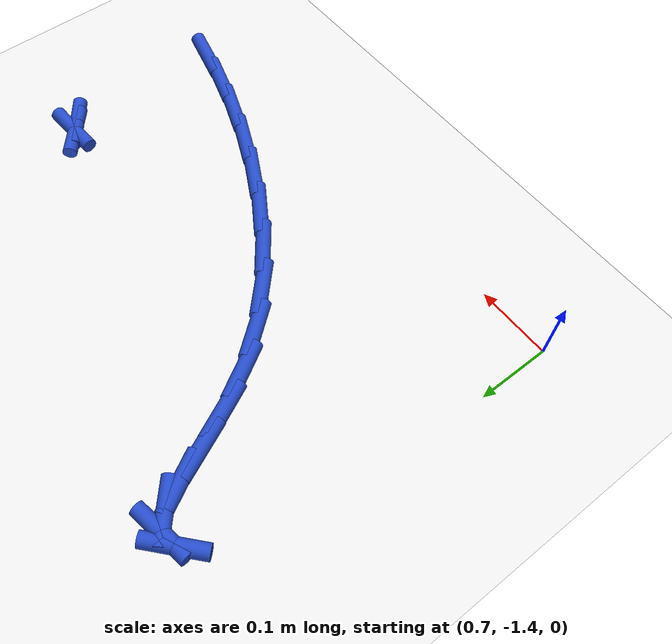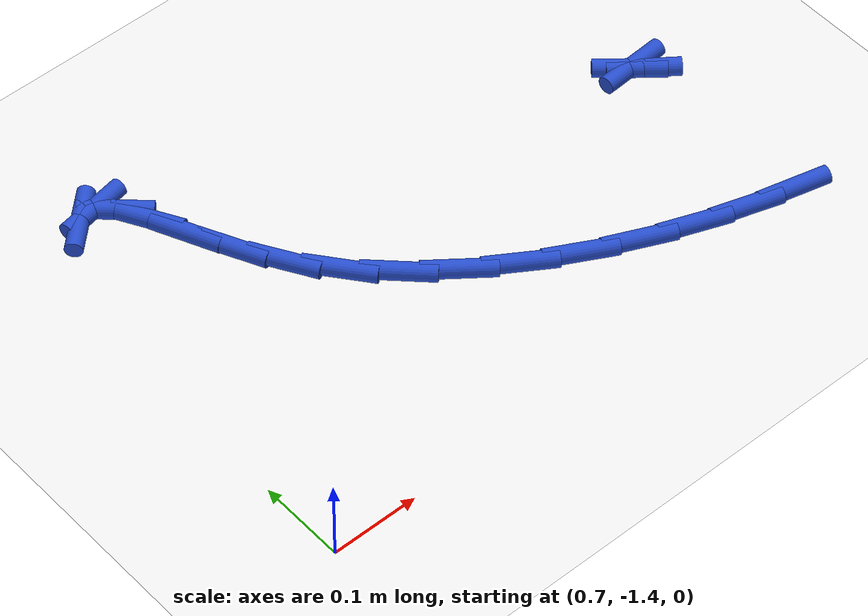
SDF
<sdf version="1.6">
 <world name="default">
  <model name="ground_plane">
   <static>1</static>
   <link name="link">
    <collision name="collision">
     <geometry><plane><normal>0 0 1</normal><size>100 100</size></plane></geometry>
     <surface><friction><ode><mu>100</mu><mu2>50</mu2></ode></friction></surface>
    </collision>
    <visual name="visual">
     <cast_shadows>0</cast_shadows>
     <geometry><plane><normal>0 0 1</normal><size>100 100</size></plane></geometry>
     <material>
      <script><uri>file://media/materials/scripts/gazebo.material</uri><name>Gazebo/WhiteGlow</name></script>
     </material>
    </visual>
   </link>
  </model>
  <model name="line">
   <link name="link_161">
    <pose>1.34033810312229 -1.1240543171024084 0.01 0 1.57 0.06470019970995604</pose>
    <collision name="collision">
     <geometry><cylinder><radius>0.01</radius><length>0.08</length></cylinder></geometry>
    </collision>
    <visual name="visual">
     <material>
      <script><name>Gazebo/Blue</name><uri>file://media/materials/scripts/gazebo.material</uri></script>
     </material>
     <geometry><cylinder><radius>0.01</radius><length>0.08</length></cylinder></geometry>
    </visual>
   </link>
   <link name="link_162">
    <pose>1.3365340892029416 -1.1243007815683062 0.01 0 1.57 -0.7131186564867583</pose>
    <collision name="collision">
     <geometry><cylinder><radius>0.01</radius><length>0.08</length></cylinder></geometry>
    </collision>
    <visual name="visual">
     <material>
      <script><name>Gazebo/Blue</name><uri>file://media/materials/scripts/gazebo.material</uri></script>
     </material>
     <geometry><cylinder><radius>0.01</radius><length>0.08</length></cylinder></geometry>
    </visual>
   </link>
   <link name="link_163">
    <pose>1.3476157120141734 -1.1338860079166277 0.01 0 1.57 -0.6480095713323362</pose>
    <collision name="collision">
     <geometry><cylinder><radius>0.01</radius><length>0.08</length></cylinder></geometry>
    </collision>
    <visual name="visual">
     <material>
      <script><name>Gazebo/Blue</name><uri>file://media/materials/scripts/gazebo.material</uri></script>
     </material>
     <geometry><cylinder><radius>0.01</radius><length>0.08</length></cylinder></geometry>
    </visual>
   </link>
   <link name="link_177">
    <pose>1.3468040295398374 -1.357437151056246 0.01 0 1.57 -0.24086616348968268</pose>
    <collision name="collision">
     <geometry><cylinder><radius>0.01</radius><length>0.08</length></cylinder></geometry>
    </collision>
    <visual name="visual">
     <material>
      <script><name>Gazebo/Blue</name><uri>file://media/materials/scripts/gazebo.material</uri></script>
     </material>
     <geometry><cylinder><radius>0.01</radius><length>0.08</length></cylinder></geometry>
    </visual>
   </link>
   <link name="link_178">
    <pose>1.293360959533032 -1.3443096661699097 0.01 0 1.57 -0.3029003433937101</pose>
    <collision name="collision">
     <geometry><cylinder><radius>0.01</radius><length>0.08</length></cylinder></geometry>
    </collision>
    <visual name="visual">
     <material>
      <script><name>Gazebo/Blue</name><uri>file://media/materials/scripts/gazebo.material</uri></script>
     </material>
     <geometry><cylinder><radius>0.01</radius><length>0.08</length></cylinder></geometry>
    </visual>
   </link>
   <link name="link_179">
    <pose>1.2376705527170306 -1.326905468064104 0.01 0 1.57 -0.36428131765784943</pose>
    <collision name="collision">
     <geometry><cylinder><radius>0.01</radius><length>0.08</length></cylinder></geometry>
    </collision>
    <visual name="visual">
     <material>
      <script><name>Gazebo/Blue</name><uri>file://media/materials/scripts/gazebo.material</uri></script>
     </material>
     <geometry><cylinder><radius>0.01</radius><length>0.08</length></cylinder></geometry>
    </visual>
   </link>
   <link name="link_180">
    <pose>1.1810282377442405 -1.3053078291482316 0.01 0 1.57 -0.4283550436507587</pose>
    <collision name="collision">
     <geometry><cylinder><radius>0.01</radius><length>0.08</length></cylinder></geometry>
    </collision>
    <visual name="visual">
     <material>
      <script><name>Gazebo/Blue</name><uri>file://media/materials/scripts/gazebo.material</uri></script>
     </material>
     <geometry><cylinder><radius>0.01</radius><length>0.08</length></cylinder></geometry>
    </visual>
   </link>
   <link name="link_181">
    <pose>1.1247294432670647 -1.2796000218316959 0.01 0 1.57 -0.49822145183963723</pose>
    <collision name="collision">
     <geometry><cylinder><radius>0.01</radius><length>0.08</length></cylinder></geometry>
    </collision>
    <visual name="visual">
     <material>
      <script><name>Gazebo/Blue</name><uri>file://media/materials/scripts/gazebo.material</uri></script>
     </material>
     <geometry><cylinder><radius>0.01</radius><length>0.08</length></cylinder></geometry>
    </visual>
   </link>
   <link name="link_182">
    <pose>1.0700695979379065 -1.2498653185238984 0.01 0 1.57 -0.5771464210321366</pose>
    <collision name="collision">
     <geometry><cylinder><radius>0.01</radius><length>0.08</length></cylinder></geometry>
    </collision>
    <visual name="visual">
     <material>
      <script><name>Gazebo/Blue</name><uri>file://media/materials/scripts/gazebo.material</uri></script>
     </material>
     <geometry><cylinder><radius>0.01</radius><length>0.08</length></cylinder></geometry>
    </visual>
   </link>
   <link name="link_183">
    <pose>1.018344130409171 -1.2161869916342423 0.01 0 1.57 -0.6688352859069451</pose>
    <collision name="collision">
     <geometry><cylinder><radius>0.01</radius><length>0.08</length></cylinder></geometry>
    </collision>
    <visual name="visual">
     <material>
      <script><name>Gazebo/Blue</name><uri>file://media/materials/scripts/gazebo.material</uri></script>
     </material>
     <geometry><cylinder><radius>0.01</radius><length>0.08</length></cylinder></geometry>
    </visual>
   </link>
   <link name="link_184">
    <pose>0.9708484693332611 -1.1786483135721295 0.01 0 1.57 -0.7775378480286028</pose>
    <collision name="collision">
     <geometry><cylinder><radius>0.01</radius><length>0.08</length></cylinder></geometry>
    </collision>
    <visual name="visual">
     <material>
      <script><name>Gazebo/Blue</name><uri>file://media/materials/scripts/gazebo.material</uri></script>
     </material>
     <geometry><cylinder><radius>0.01</radius><length>0.08</length></cylinder></geometry>
    </visual>
   </link>
   <link name="link_185">
    <pose>0.928878043362583 -1.137332556746964 0.01 0 1.57 -0.9077750810223603</pose>
    <collision name="collision">
     <geometry><cylinder><radius>0.01</radius><length>0.08</length></cylinder></geometry>
    </collision>
    <visual name="visual">
     <material>
      <script><name>Gazebo/Blue</name><uri>file://media/materials/scripts/gazebo.material</uri></script>
     </material>
     <geometry><cylinder><radius>0.01</radius><length>0.08</length></cylinder></geometry>
    </visual>
   </link>
   <link name="link_186">
    <pose>0.8937278932796405 -1.0923235054795963 0.01 0 1.57 -1.0434898138917892</pose>
    <collision name="collision">
     <geometry><cylinder><radius>0.01</radius><length>0.08</length></cylinder></geometry>
    </collision>
    <visual name="visual">
     <material>
      <script><name>Gazebo/Blue</name><uri>file://media/materials/scripts/gazebo.material</uri></script>
     </material>
     <geometry><cylinder><radius>0.01</radius><length>0.08</length></cylinder></geometry>
    </visual>
   </link>
   <link name="link_187">
    <pose>0.8659715689364591 -1.044657169225234 0.01 0 1.57 -1.12760473352544</pose>
    <collision name="collision">
     <geometry><cylinder><radius>0.01</radius><length>0.08</length></cylinder></geometry>
    </collision>
    <visual name="visual">
     <material>
      <script><name>Gazebo/Blue</name><uri>file://media/materials/scripts/gazebo.material</uri></script>
     </material>
     <geometry><cylinder><radius>0.01</radius><length>0.08</length></cylinder></geometry>
    </visual>
   </link>
   <link name="link_188">
    <pose>0.8439648642356696 -0.9982965560577343 0.01 0 1.57 -1.146160484486578</pose>
    <collision name="collision">
     <geometry><cylinder><radius>0.01</radius><length>0.08</length></cylinder></geometry>
    </collision>
    <visual name="visual">
     <material>
      <script><name>Gazebo/Blue</name><uri>file://media/materials/scripts/gazebo.material</uri></script>
     </material>
     <geometry><cylinder><radius>0.01</radius><length>0.08</length></cylinder></geometry>
    </visual>
   </link>
   <link name="link_189">
    <pose>0.8256388478200567 -0.9577652272755905 0.01 0 1.57 -1.0650044357117647</pose>
    <collision name="collision">
     <geometry><cylinder><radius>0.01</radius><length>0.08</length></cylinder></geometry>
    </collision>
    <visual name="visual">
     <material>
      <script><name>Gazebo/Blue</name><uri>file://media/materials/scripts/gazebo.material</uri></script>
     </material>
     <geometry><cylinder><radius>0.01</radius><length>0.08</length></cylinder></geometry>
    </visual>
   </link>
   <link name="link_190">
    <pose>0.8089245883324038 -0.9275867441772934 0.01 0 1.57 -0.7278960023495264</pose>
    <collision name="collision">
     <geometry><cylinder><radius>0.01</radius><length>0.08</length></cylinder></geometry>
    </collision>
    <visual name="visual">
     <material>
      <script><name>Gazebo/Blue</name><uri>file://media/materials/scripts/gazebo.material</uri></script>
     </material>
     <geometry><cylinder><radius>0.01</radius><length>0.08</length></cylinder></geometry>
    </visual>
   </link>
   <link name="link_191">
    <pose>0.7917531544154943 -0.9122846680613337 0.01 0 1.57 0.18031864431711975</pose>
    <collision name="collision">
     <geometry><cylinder><radius>0.01</radius><length>0.08</length></cylinder></geometry>
    </collision>
    <visual name="visual">
     <material>
      <script><name>Gazebo/Blue</name><uri>file://media/materials/scripts/gazebo.material</uri></script>
     </material>
     <geometry><cylinder><radius>0.01</radius><length>0.08</length></cylinder></geometry>
    </visual>
   </link>
   <link name="link_192">
    <pose>0.772197052220004 -0.9158497209231999 0.01 0 1.57 0.747257275710891</pose>
    <collision name="collision">
     <geometry><cylinder><radius>0.01</radius><length>0.08</length></cylinder></geometry>
    </collision>
    <visual name="visual">
     <material>
      <script><name>Gazebo/Blue</name><uri>file://media/materials/scripts/gazebo.material</uri></script>
     </material>
     <geometry><cylinder><radius>0.01</radius><length>0.08</length></cylinder></geometry>
    </visual>
   </link>
  </model>
 </world>
</sdf>
